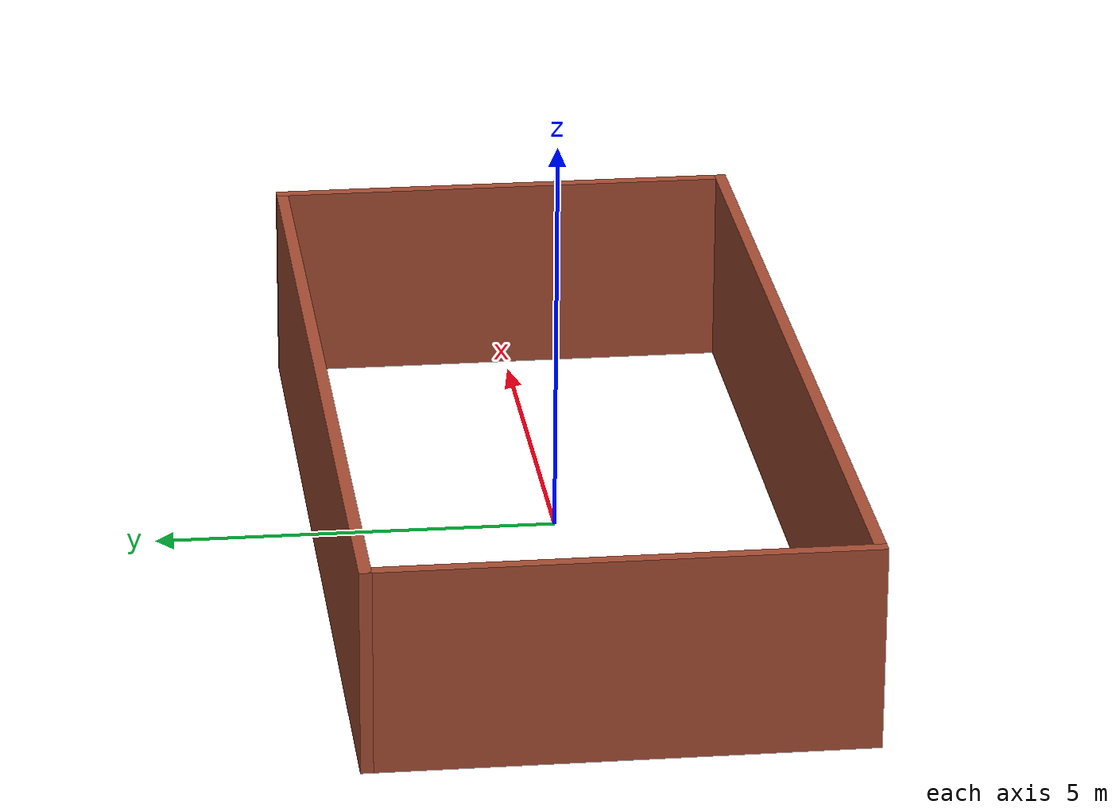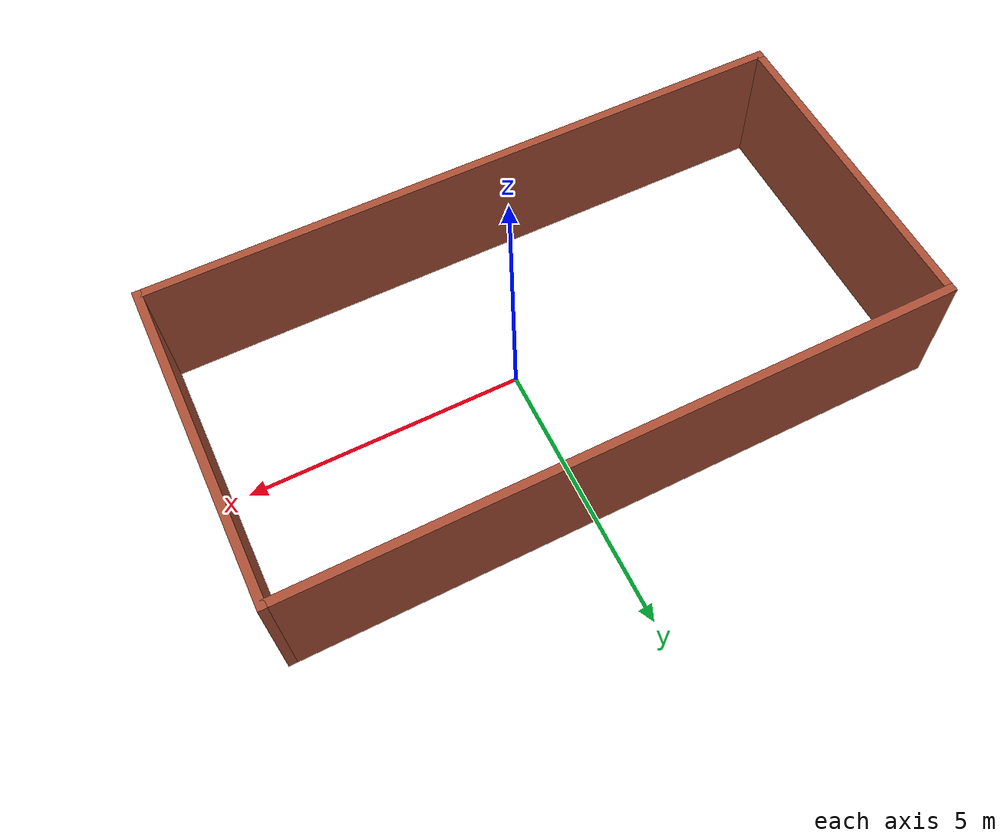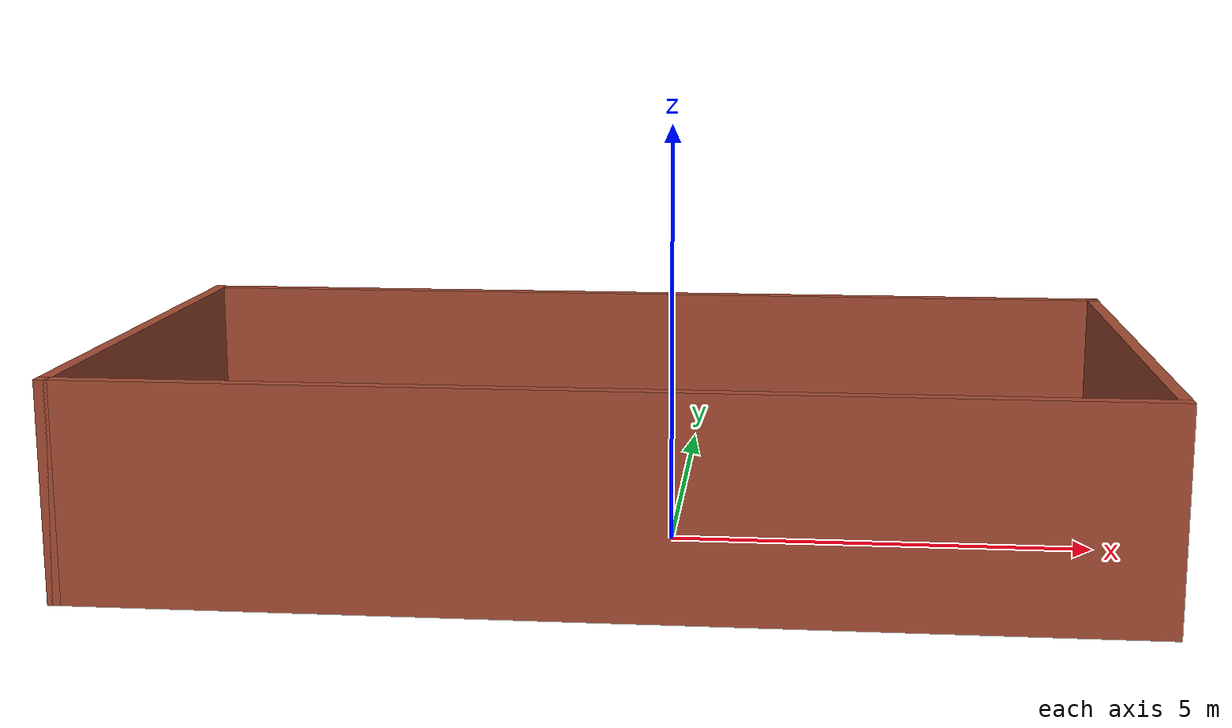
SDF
<?xml version='1.0'?>
<sdf version='1.7'>
  <model name='brick_walls'>
    <pose>-0.555 0.045 0 0 -0 0</pose>
    <link name='Wall_0'>
      <collision name='Wall_0_Collision'>
        <geometry>
          <box>
            <size>12 0.15 2.5</size>
          </box>
        </geometry>
        <pose>0 0 1.25 0 -0 0</pose>
      </collision>
      <visual name='Wall_0_Visual'>
        <pose>0 0 1.25 0 -0 0</pose>
        <geometry>
          <box>
            <size>12 0.15 2.5</size>
          </box>
        </geometry>
        <material>
          <script>
            <uri>file://media/materials/scripts/gazebo.material</uri>
            <name>Gazebo/Bricks</name>
          </script>
          <ambient>1 1 1 1</ambient>
        </material>
        <meta>
          <layer>0</layer>
        </meta>
      </visual>
      <pose>0 -2.925 0 0 -0 0</pose>
    </link>
    <link name='Wall_2'>
      <collision name='Wall_2_Collision'>
        <geometry>
          <box>
            <size>6 0.15 2.5</size>
          </box>
        </geometry>
        <pose>0 0 1.25 0 -0 0</pose>
      </collision>
      <visual name='Wall_2_Visual'>
        <pose>0 0 1.25 0 -0 0</pose>
        <geometry>
          <box>
            <size>6 0.15 2.5</size>
          </box>
        </geometry>
        <material>
          <script>
            <uri>file://media/materials/scripts/gazebo.material</uri>
            <name>Gazebo/Bricks</name>
          </script>
          <ambient>1 1 1 1</ambient>
        </material>
        <meta>
          <layer>0</layer>
        </meta>
      </visual>
      <pose>5.925 -0 0 0 -0 1.5708</pose>
    </link>
    <link name='Wall_7'>
      <collision name='Wall_7_Collision'>
        <geometry>
          <box>
            <size>12 0.15 2.5</size>
          </box>
        </geometry>
        <pose>0 0 1.25 0 -0 0</pose>
      </collision>
      <visual name='Wall_7_Visual'>
        <pose>0 0 1.25 0 -0 0</pose>
        <geometry>
          <box>
            <size>12 0.15 2.5</size>
          </box>
        </geometry>
        <material>
          <script>
            <uri>file://media/materials/scripts/gazebo.material</uri>
            <name>Gazebo/Bricks</name>
          </script>
          <ambient>1 1 1 1</ambient>
        </material>
        <meta>
          <layer>0</layer>
        </meta>
      </visual>
      <pose>0 2.925 0 0 -0 3.14159</pose>
    </link>
    <link name='Wall_9'>
      <collision name='Wall_9_Collision'>
        <geometry>
          <box>
            <size>6 0.15 2.5</size>
          </box>
        </geometry>
        <pose>0 0 1.25 0 -0 0</pose>
      </collision>
      <visual name='Wall_9_Visual'>
        <pose>0 0 1.25 0 -0 0</pose>
        <geometry>
          <box>
            <size>6 0.15 2.5</size>
          </box>
        </geometry>
        <material>
          <script>
            <uri>file://media/materials/scripts/gazebo.material</uri>
            <name>Gazebo/Bricks</name>
          </script>
          <ambient>1 1 1 1</ambient>
        </material>
        <meta>
          <layer>0</layer>
        </meta>
      </visual>
      <pose>-5.925 -0 0 0 -0 -1.5708</pose>
    </link>
    <static>1</static>
  </model>
</sdf>
